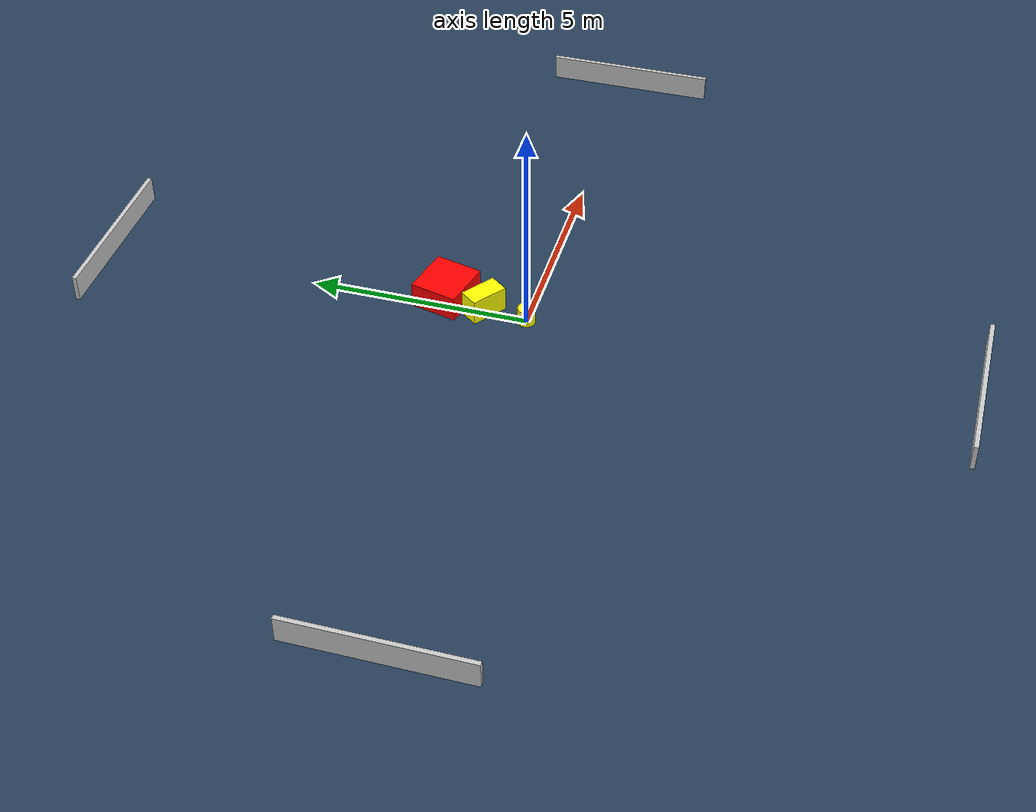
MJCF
<?xml version="1.0" ?>
<mujoco model="generated_environment">
  <option timestep="0.01" integrator="RK4" cone="elliptic"/>
  <default>
    <geom density="1"/>
  </default>
  <asset>
    <texture builtin="gradient" height="3072" name="skybox" rgb1="0.3 0.5 0.7" rgb2="0 0 0" type="skybox" width="512"/>
    <texture builtin="checker" height="300" name="groundplane" rgb1="0.2 0.3 0.4" rgb2="0.1 0.2 0.3" type="2d" width="300"/>
    <material name="groundplane" reflectance="0.2" texrepeat="5 5" texture="groundplane"/>
  </asset>
  <worldbody>
    <light dir="0 0 -1" directional="true" pos="0 0 1.5"/>
    <geom condim="3" friction="0.5 0.005 0.001" material="groundplane" name="floor" pos="0 0 0" size="0 0 0.05" type="plane"/>
    <body name="walls">
      <geom name="wall_1" condim="4" pos="-10.0 0.0 0.3" rgba="0.800000011920929 0.800000011920929 0.800000011920929 1.0" size="0.05 2.0 0.3" type="box"/>
      <geom name="wall_2" condim="4" pos="10.0 0.0 0.3" rgba="0.800000011920929 0.800000011920929 0.800000011920929 1.0" size="0.05 2.0 0.3" type="box"/>
      <geom name="wall_3" condim="4" pos="0.0 -10.0 0.3" rgba="0.800000011920929 0.800000011920929 0.800000011920929 1.0" size="2.0 0.05 0.3" type="box"/>
      <geom name="wall_4" condim="4" pos="0.0 10.0 0.3" rgba="0.800000011920929 0.800000011920929 0.800000011920929 1.0" size="2.0 0.05 0.3" type="box"/>
    </body>
    <body name="robot">
      <joint name="joint_x" type="slide" pos="0 0 0" axis="1 0 0"/>
      <joint name="joint_y" type="slide" pos="0 0 0" axis="0 1 0"/>
      <geom name="robot" type="cylinder" pos="0.0 0.0 0.2" size="0.2 0.2 0.0" mass="5.0" friction="1.0 0.005 0.0001" condim="4" rgba="1.0 1.0 0.0 1.0"/>
    </body>
    <body name="obstacle_1_movable">
      <geom name="obstacle_1_movable" condim="4" pos="0.0965216242984088 1.0202711365451582 0.3" euler="0 0 233.45757970085808" friction="0.0 0.005 0.001" rgba="1.0 1.0 0.0 1.0" size="0.23519664074843127 0.4330817203229294 0.3" type="box" mass="0.1"/>
      <joint type="free"/>
    </body>
    <body name="obstacle_2_static">
      <geom name="obstacle_2_static" condim="4" pos="0.3011485474630375 1.9607648517044483 0.3" euler="0 0 166.43679799190207" friction="0.0 0.005 0.001" rgba="1.0 0.0 0.0 1.0" size="0.5849282631392241 0.5529730970948524 0.3" type="box"/>
    </body>
  </worldbody>
  <actuator>
    <motor name="actuator_x" joint="joint_x" gear="1" ctrlrange="-1 1"/>
    <motor name="actuator_y" joint="joint_y" gear="1" ctrlrange="-1 1"/>
  </actuator>
</mujoco>
